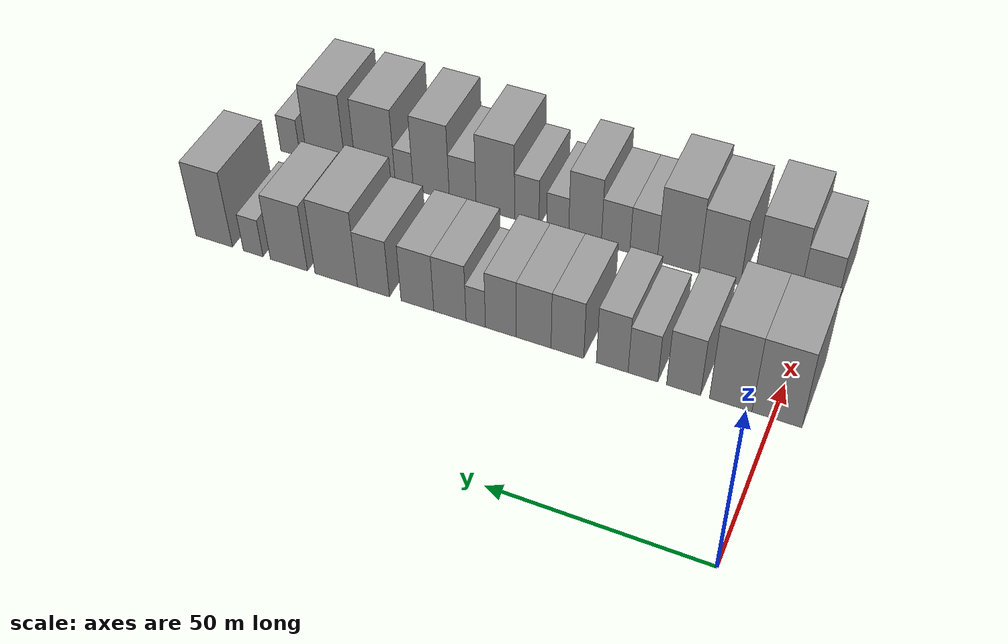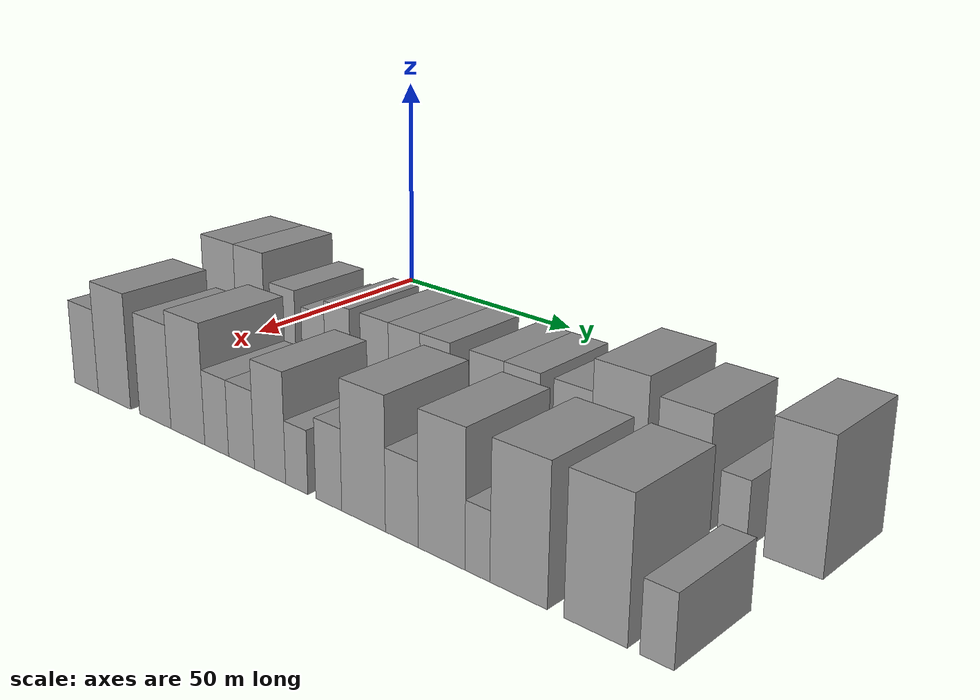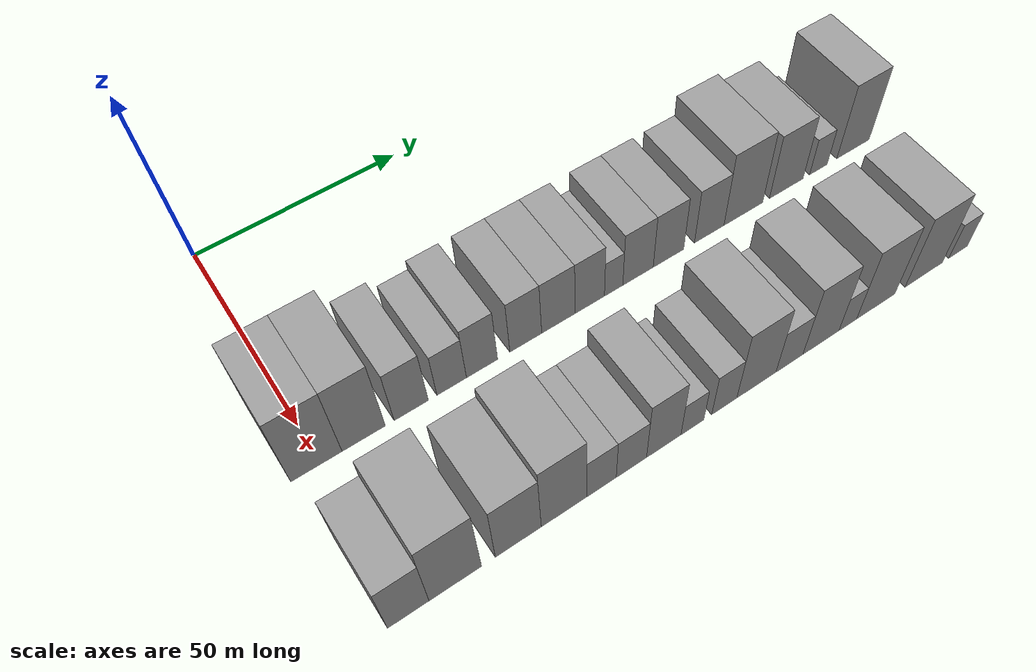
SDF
<sdf version="1.6">
 <world name="default">
  <model name="building_30">
   <static>1</static>
   <pose>50.0000 -0.9442 0 0.000000 0.000000 0.000000</pose>
   <link name="link">
    <pose>0 0 12.00 0 0 0</pose>
    <collision name="collision"><geometry><box><size>20.0000 11.0809 24.0000</size></box></geometry></collision>
    <visual name="visual">
     <cast_shadows>0</cast_shadows>
     <geometry><box><size>20.0000 11.0809 24.0000</size></box></geometry>
     <material>
      <script>
       <uri>model://grey_wall/materials/scripts</uri>
       <uri>model://grey_wall/materials/textures</uri>
       <name>vrc/grey_wall</name>
      </script>
     </material>
    </visual>
   </link>
  </model>
  <model name="building_31">
   <static>1</static>
   <pose>50.0000 9.4016 0 0.000000 0.000000 0.000000</pose>
   <link name="link">
    <pose>0 0 12.00 0 0 0</pose>
    <collision name="collision"><geometry><box><size>20.0000 9.6106 24.0000</size></box></geometry></collision>
    <visual name="visual">
     <cast_shadows>0</cast_shadows>
     <geometry><box><size>20.0000 9.6106 24.0000</size></box></geometry>
     <material>
      <script>
       <uri>model://grey_wall/materials/scripts</uri>
       <uri>model://grey_wall/materials/textures</uri>
       <name>vrc/grey_wall</name>
      </script>
     </material>
    </visual>
   </link>
  </model>
  <model name="building_32">
   <static>1</static>
   <pose>50.0000 20.1189 0 0.000000 0.000000 0.000000</pose>
   <link name="link">
    <pose>0 0 9.00 0 0 0</pose>
    <collision name="collision"><geometry><box><size>20.0000 7.8241 18.0000</size></box></geometry></collision>
    <visual name="visual">
     <cast_shadows>0</cast_shadows>
     <geometry><box><size>20.0000 7.8241 18.0000</size></box></geometry>
     <material>
      <script>
       <uri>model://grey_wall/materials/scripts</uri>
       <uri>model://grey_wall/materials/textures</uri>
       <name>vrc/grey_wall</name>
      </script>
     </material>
    </visual>
   </link>
  </model>
  <model name="building_33">
   <static>1</static>
   <pose>50.0000 29.5173 0 0.000000 0.000000 0.000000</pose>
   <link name="link">
    <pose>0 0 7.50 0 0 0</pose>
    <collision name="collision"><geometry><box><size>20.0000 6.9727 15.0000</size></box></geometry></collision>
    <visual name="visual">
     <cast_shadows>0</cast_shadows>
     <geometry><box><size>20.0000 6.9727 15.0000</size></box></geometry>
     <material>
      <script>
       <uri>model://grey_wall/materials/scripts</uri>
       <uri>model://grey_wall/materials/textures</uri>
       <name>vrc/grey_wall</name>
      </script>
     </material>
    </visual>
   </link>
  </model>
  <model name="building_34">
   <static>1</static>
   <pose>50.0000 36.7417 0 0.000000 0.000000 0.000000</pose>
   <link name="link">
    <pose>0 0 9.00 0 0 0</pose>
    <collision name="collision"><geometry><box><size>20.0000 7.4761 18.0000</size></box></geometry></collision>
    <visual name="visual">
     <cast_shadows>0</cast_shadows>
     <geometry><box><size>20.0000 7.4761 18.0000</size></box></geometry>
     <material>
      <script>
       <uri>model://grey_wall/materials/scripts</uri>
       <uri>model://grey_wall/materials/textures</uri>
       <name>vrc/grey_wall</name>
      </script>
     </material>
    </visual>
   </link>
  </model>
  <model name="building_35">
   <static>1</static>
   <pose>50.0000 47.4187 0 0.000000 0.000000 0.000000</pose>
   <link name="link">
    <pose>0 0 9.00 0 0 0</pose>
    <collision name="collision"><geometry><box><size>20.0000 7.8779 18.0000</size></box></geometry></collision>
    <visual name="visual">
     <cast_shadows>0</cast_shadows>
     <geometry><box><size>20.0000 7.8779 18.0000</size></box></geometry>
     <material>
      <script>
       <uri>model://grey_wall/materials/scripts</uri>
       <uri>model://grey_wall/materials/textures</uri>
       <name>vrc/grey_wall</name>
      </script>
     </material>
    </visual>
   </link>
  </model>
  <model name="building_36">
   <static>1</static>
   <pose>50.0000 55.5875 0 0.000000 0.000000 0.000000</pose>
   <link name="link">
    <pose>0 0 9.00 0 0 0</pose>
    <collision name="collision"><geometry><box><size>20.0000 8.4597 18.0000</size></box></geometry></collision>
    <visual name="visual">
     <cast_shadows>0</cast_shadows>
     <geometry><box><size>20.0000 8.4597 18.0000</size></box></geometry>
     <material>
      <script>
       <uri>model://grey_wall/materials/scripts</uri>
       <uri>model://grey_wall/materials/textures</uri>
       <name>vrc/grey_wall</name>
      </script>
     </material>
    </visual>
   </link>
  </model>
  <model name="building_37">
   <static>1</static>
   <pose>50.0000 63.6244 0 0.000000 0.000000 0.000000</pose>
   <link name="link">
    <pose>0 0 9.00 0 0 0</pose>
    <collision name="collision"><geometry><box><size>20.0000 7.6142 18.0000</size></box></geometry></collision>
    <visual name="visual">
     <cast_shadows>0</cast_shadows>
     <geometry><box><size>20.0000 7.6142 18.0000</size></box></geometry>
     <material>
      <script>
       <uri>model://grey_wall/materials/scripts</uri>
       <uri>model://grey_wall/materials/textures</uri>
       <name>vrc/grey_wall</name>
      </script>
     </material>
    </visual>
   </link>
  </model>
  <model name="building_38">
   <static>1</static>
   <pose>50.0000 69.8518 0 0.000000 0.000000 0.000000</pose>
   <link name="link">
    <pose>0 0 6.00 0 0 0</pose>
    <collision name="collision"><geometry><box><size>20.0000 4.8407 12.0000</size></box></geometry></collision>
    <visual name="visual">
     <cast_shadows>0</cast_shadows>
     <geometry><box><size>20.0000 4.8407 12.0000</size></box></geometry>
     <material>
      <script>
       <uri>model://grey_wall/materials/scripts</uri>
       <uri>model://grey_wall/materials/textures</uri>
       <name>vrc/grey_wall</name>
      </script>
     </material>
    </visual>
   </link>
  </model>
  <model name="building_39">
   <static>1</static>
   <pose>50.0000 76.3494 0 0.000000 0.000000 0.000000</pose>
   <link name="link">
    <pose>0 0 9.00 0 0 0</pose>
    <collision name="collision"><geometry><box><size>20.0000 8.1544 18.0000</size></box></geometry></collision>
    <visual name="visual">
     <cast_shadows>0</cast_shadows>
     <geometry><box><size>20.0000 8.1544 18.0000</size></box></geometry>
     <material>
      <script>
       <uri>model://grey_wall/materials/scripts</uri>
       <uri>model://grey_wall/materials/textures</uri>
       <name>vrc/grey_wall</name>
      </script>
     </material>
    </visual>
   </link>
  </model>
  <model name="building_40">
   <static>1</static>
   <pose>50.0000 84.6079 0 0.000000 0.000000 0.000000</pose>
   <link name="link">
    <pose>0 0 9.00 0 0 0</pose>
    <collision name="collision"><geometry><box><size>20.0000 8.3627 18.0000</size></box></geometry></collision>
    <visual name="visual">
     <cast_shadows>0</cast_shadows>
     <geometry><box><size>20.0000 8.3627 18.0000</size></box></geometry>
     <material>
      <script>
       <uri>model://grey_wall/materials/scripts</uri>
       <uri>model://grey_wall/materials/textures</uri>
       <name>vrc/grey_wall</name>
      </script>
     </material>
    </visual>
   </link>
  </model>
  <model name="building_41">
   <static>1</static>
   <pose>50.0000 95.9623 0 0.000000 0.000000 0.000000</pose>
   <link name="link">
    <pose>0 0 9.00 0 0 0</pose>
    <collision name="collision"><geometry><box><size>20.0000 8.3461 18.0000</size></box></geometry></collision>
    <visual name="visual">
     <cast_shadows>0</cast_shadows>
     <geometry><box><size>20.0000 8.3461 18.0000</size></box></geometry>
     <material>
      <script>
       <uri>model://grey_wall/materials/scripts</uri>
       <uri>model://grey_wall/materials/textures</uri>
       <name>vrc/grey_wall</name>
      </script>
     </material>
    </visual>
   </link>
  </model>
  <model name="building_42">
   <static>1</static>
   <pose>50.0000 105.7547 0 0.000000 0.000000 0.000000</pose>
   <link name="link">
    <pose>0 0 12.00 0 0 0</pose>
    <collision name="collision"><geometry><box><size>20.0000 11.2388 24.0000</size></box></geometry></collision>
    <visual name="visual">
     <cast_shadows>0</cast_shadows>
     <geometry><box><size>20.0000 11.2388 24.0000</size></box></geometry>
     <material>
      <script>
       <uri>model://grey_wall/materials/scripts</uri>
       <uri>model://grey_wall/materials/textures</uri>
       <name>vrc/grey_wall</name>
      </script>
     </material>
    </visual>
   </link>
  </model>
  <model name="building_43">
   <static>1</static>
   <pose>50.0000 118.3998 0 0.000000 0.000000 0.000000</pose>
   <link name="link">
    <pose>0 0 10.50 0 0 0</pose>
    <collision name="collision"><geometry><box><size>20.0000 10.0513 21.0000</size></box></geometry></collision>
    <visual name="visual">
     <cast_shadows>0</cast_shadows>
     <geometry><box><size>20.0000 10.0513 21.0000</size></box></geometry>
     <material>
      <script>
       <uri>model://grey_wall/materials/scripts</uri>
       <uri>model://grey_wall/materials/textures</uri>
       <name>vrc/grey_wall</name>
      </script>
     </material>
    </visual>
   </link>
  </model>
  <model name="building_44">
   <static>1</static>
   <pose>50.0000 128.1197 0 0.000000 0.000000 0.000000</pose>
   <link name="link">
    <pose>0 0 6.00 0 0 0</pose>
    <collision name="collision"><geometry><box><size>20.0000 5.3886 12.0000</size></box></geometry></collision>
    <visual name="visual">
     <cast_shadows>0</cast_shadows>
     <geometry><box><size>20.0000 5.3886 12.0000</size></box></geometry>
     <material>
      <script>
       <uri>model://grey_wall/materials/scripts</uri>
       <uri>model://grey_wall/materials/textures</uri>
       <name>vrc/grey_wall</name>
      </script>
     </material>
    </visual>
   </link>
  </model>
  <model name="building_45">
   <static>1</static>
   <pose>50.0000 138.9003 0 0.000000 0.000000 0.000000</pose>
   <link name="link">
    <pose>0 0 12.00 0 0 0</pose>
    <collision name="collision"><geometry><box><size>20.0000 10.1726 24.0000</size></box></geometry></collision>
    <visual name="visual">
     <cast_shadows>0</cast_shadows>
     <geometry><box><size>20.0000 10.1726 24.0000</size></box></geometry>
     <material>
      <script>
       <uri>model://grey_wall/materials/scripts</uri>
       <uri>model://grey_wall/materials/textures</uri>
       <name>vrc/grey_wall</name>
      </script>
     </material>
    </visual>
   </link>
  </model>
  <model name="building_97">
   <static>1</static>
   <pose>85.0000 -0.6784 0 0.000000 0.000000 0.000000</pose>
   <link name="link">
    <pose>0 0 9.00 0 0 0</pose>
    <collision name="collision"><geometry><box><size>20.0000 8.5508 18.0000</size></box></geometry></collision>
    <visual name="visual">
     <cast_shadows>0</cast_shadows>
     <geometry><box><size>20.0000 8.5508 18.0000</size></box></geometry>
     <material>
      <script>
       <uri>model://grey_wall/materials/scripts</uri>
       <uri>model://grey_wall/materials/textures</uri>
       <name>vrc/grey_wall</name>
      </script>
     </material>
    </visual>
   </link>
  </model>
  <model name="building_98">
   <static>1</static>
   <pose>85.0000 9.1576 0 0.000000 0.000000 0.000000</pose>
   <link name="link">
    <pose>0 0 12.00 0 0 0</pose>
    <collision name="collision"><geometry><box><size>20.0000 11.1212 24.0000</size></box></geometry></collision>
    <visual name="visual">
     <cast_shadows>0</cast_shadows>
     <geometry><box><size>20.0000 11.1212 24.0000</size></box></geometry>
     <material>
      <script>
       <uri>model://grey_wall/materials/scripts</uri>
       <uri>model://grey_wall/materials/textures</uri>
       <name>vrc/grey_wall</name>
      </script>
     </material>
    </visual>
   </link>
  </model>
  <model name="building_99">
   <static>1</static>
   <pose>85.0000 22.8064 0 0.000000 0.000000 0.000000</pose>
   <link name="link">
    <pose>0 0 10.50 0 0 0</pose>
    <collision name="collision"><geometry><box><size>20.0000 10.1763 21.0000</size></box></geometry></collision>
    <visual name="visual">
     <cast_shadows>0</cast_shadows>
     <geometry><box><size>20.0000 10.1763 21.0000</size></box></geometry>
     <material>
      <script>
       <uri>model://grey_wall/materials/scripts</uri>
       <uri>model://grey_wall/materials/textures</uri>
       <name>vrc/grey_wall</name>
      </script>
     </material>
    </visual>
   </link>
  </model>
  <model name="building_100">
   <static>1</static>
   <pose>85.0000 33.0621 0 0.000000 0.000000 0.000000</pose>
   <link name="link">
    <pose>0 0 12.00 0 0 0</pose>
    <collision name="collision"><geometry><box><size>20.0000 10.3352 24.0000</size></box></geometry></collision>
    <visual name="visual">
     <cast_shadows>0</cast_shadows>
     <geometry><box><size>20.0000 10.3352 24.0000</size></box></geometry>
     <material>
      <script>
       <uri>model://grey_wall/materials/scripts</uri>
       <uri>model://grey_wall/materials/textures</uri>
       <name>vrc/grey_wall</name>
      </script>
     </material>
    </visual>
   </link>
  </model>
  <model name="building_101">
   <static>1</static>
   <pose>85.0000 41.7088 0 0.000000 0.000000 0.000000</pose>
   <link name="link">
    <pose>0 0 7.50 0 0 0</pose>
    <collision name="collision"><geometry><box><size>20.0000 6.9582 15.0000</size></box></geometry></collision>
    <visual name="visual">
     <cast_shadows>0</cast_shadows>
     <geometry><box><size>20.0000 6.9582 15.0000</size></box></geometry>
     <material>
      <script>
       <uri>model://grey_wall/materials/scripts</uri>
       <uri>model://grey_wall/materials/textures</uri>
       <name>vrc/grey_wall</name>
      </script>
     </material>
    </visual>
   </link>
  </model>
  <model name="building_102">
   <static>1</static>
   <pose>85.0000 48.8190 0 0.000000 0.000000 0.000000</pose>
   <link name="link">
    <pose>0 0 7.50 0 0 0</pose>
    <collision name="collision"><geometry><box><size>20.0000 7.2622 15.0000</size></box></geometry></collision>
    <visual name="visual">
     <cast_shadows>0</cast_shadows>
     <geometry><box><size>20.0000 7.2622 15.0000</size></box></geometry>
     <material>
      <script>
       <uri>model://grey_wall/materials/scripts</uri>
       <uri>model://grey_wall/materials/textures</uri>
       <name>vrc/grey_wall</name>
      </script>
     </material>
    </visual>
   </link>
  </model>
  <model name="building_103">
   <static>1</static>
   <pose>85.0000 56.6655 0 0.000000 0.000000 0.000000</pose>
   <link name="link">
    <pose>0 0 10.50 0 0 0</pose>
    <collision name="collision"><geometry><box><size>20.0000 8.4308 21.0000</size></box></geometry></collision>
    <visual name="visual">
     <cast_shadows>0</cast_shadows>
     <geometry><box><size>20.0000 8.4308 21.0000</size></box></geometry>
     <material>
      <script>
       <uri>model://grey_wall/materials/scripts</uri>
       <uri>model://grey_wall/materials/textures</uri>
       <name>vrc/grey_wall</name>
      </script>
     </material>
    </visual>
   </link>
  </model>
  <model name="building_104">
   <static>1</static>
   <pose>85.0000 63.7536 0 0.000000 0.000000 0.000000</pose>
   <link name="link">
    <pose>0 0 6.00 0 0 0</pose>
    <collision name="collision"><geometry><box><size>20.0000 5.7455 12.0000</size></box></geometry></collision>
    <visual name="visual">
     <cast_shadows>0</cast_shadows>
     <geometry><box><size>20.0000 5.7455 12.0000</size></box></geometry>
     <material>
      <script>
       <uri>model://grey_wall/materials/scripts</uri>
       <uri>model://grey_wall/materials/textures</uri>
       <name>vrc/grey_wall</name>
      </script>
     </material>
    </visual>
   </link>
  </model>
  <model name="building_105">
   <static>1</static>
   <pose>85.0000 71.8450 0 0.000000 0.000000 0.000000</pose>
   <link name="link">
    <pose>0 0 7.50 0 0 0</pose>
    <collision name="collision"><geometry><box><size>20.0000 6.4372 15.0000</size></box></geometry></collision>
    <visual name="visual">
     <cast_shadows>0</cast_shadows>
     <geometry><box><size>20.0000 6.4372 15.0000</size></box></geometry>
     <material>
      <script>
       <uri>model://grey_wall/materials/scripts</uri>
       <uri>model://grey_wall/materials/textures</uri>
       <name>vrc/grey_wall</name>
      </script>
     </material>
    </visual>
   </link>
  </model>
  <model name="building_106">
   <static>1</static>
   <pose>85.0000 80.2032 0 0.000000 0.000000 0.000000</pose>
   <link name="link">
    <pose>0 0 12.00 0 0 0</pose>
    <collision name="collision"><geometry><box><size>20.0000 10.2793 24.0000</size></box></geometry></collision>
    <visual name="visual">
     <cast_shadows>0</cast_shadows>
     <geometry><box><size>20.0000 10.2793 24.0000</size></box></geometry>
     <material>
      <script>
       <uri>model://grey_wall/materials/scripts</uri>
       <uri>model://grey_wall/materials/textures</uri>
       <name>vrc/grey_wall</name>
      </script>
     </material>
    </visual>
   </link>
  </model>
  <model name="building_107">
   <static>1</static>
   <pose>85.0000 88.9788 0 0.000000 0.000000 0.000000</pose>
   <link name="link">
    <pose>0 0 7.50 0 0 0</pose>
    <collision name="collision"><geometry><box><size>20.0000 7.2718 15.0000</size></box></geometry></collision>
    <visual name="visual">
     <cast_shadows>0</cast_shadows>
     <geometry><box><size>20.0000 7.2718 15.0000</size></box></geometry>
     <material>
      <script>
       <uri>model://grey_wall/materials/scripts</uri>
       <uri>model://grey_wall/materials/textures</uri>
       <name>vrc/grey_wall</name>
      </script>
     </material>
    </visual>
   </link>
  </model>
  <model name="building_108">
   <static>1</static>
   <pose>85.0000 97.5811 0 0.000000 0.000000 0.000000</pose>
   <link name="link">
    <pose>0 0 12.00 0 0 0</pose>
    <collision name="collision"><geometry><box><size>20.0000 9.9329 24.0000</size></box></geometry></collision>
    <visual name="visual">
     <cast_shadows>0</cast_shadows>
     <geometry><box><size>20.0000 9.9329 24.0000</size></box></geometry>
     <material>
      <script>
       <uri>model://grey_wall/materials/scripts</uri>
       <uri>model://grey_wall/materials/textures</uri>
       <name>vrc/grey_wall</name>
      </script>
     </material>
    </visual>
   </link>
  </model>
  <model name="building_109">
   <static>1</static>
   <pose>85.0000 105.0514 0 0.000000 0.000000 0.000000</pose>
   <link name="link">
    <pose>0 0 6.00 0 0 0</pose>
    <collision name="collision"><geometry><box><size>20.0000 5.0077 12.0000</size></box></geometry></collision>
    <visual name="visual">
     <cast_shadows>0</cast_shadows>
     <geometry><box><size>20.0000 5.0077 12.0000</size></box></geometry>
     <material>
      <script>
       <uri>model://grey_wall/materials/scripts</uri>
       <uri>model://grey_wall/materials/textures</uri>
       <name>vrc/grey_wall</name>
      </script>
     </material>
    </visual>
   </link>
  </model>
  <model name="building_110">
   <static>1</static>
   <pose>85.0000 113.0807 0 0.000000 0.000000 0.000000</pose>
   <link name="link">
    <pose>0 0 12.00 0 0 0</pose>
    <collision name="collision"><geometry><box><size>20.0000 11.0508 24.0000</size></box></geometry></collision>
    <visual name="visual">
     <cast_shadows>0</cast_shadows>
     <geometry><box><size>20.0000 11.0508 24.0000</size></box></geometry>
     <material>
      <script>
       <uri>model://grey_wall/materials/scripts</uri>
       <uri>model://grey_wall/materials/textures</uri>
       <name>vrc/grey_wall</name>
      </script>
     </material>
    </visual>
   </link>
  </model>
  <model name="building_111">
   <static>1</static>
   <pose>85.0000 127.1716 0 0.000000 0.000000 0.000000</pose>
   <link name="link">
    <pose>0 0 12.00 0 0 0</pose>
    <collision name="collision"><geometry><box><size>20.0000 11.1311 24.0000</size></box></geometry></collision>
    <visual name="visual">
     <cast_shadows>0</cast_shadows>
     <geometry><box><size>20.0000 11.1311 24.0000</size></box></geometry>
     <material>
      <script>
       <uri>model://grey_wall/materials/scripts</uri>
       <uri>model://grey_wall/materials/textures</uri>
       <name>vrc/grey_wall</name>
      </script>
     </material>
    </visual>
   </link>
  </model>
  <model name="building_112">
   <static>1</static>
   <pose>85.0000 137.5514 0 0.000000 0.000000 0.000000</pose>
   <link name="link">
    <pose>0 0 6.00 0 0 0</pose>
    <collision name="collision"><geometry><box><size>20.0000 5.6285 12.0000</size></box></geometry></collision>
    <visual name="visual">
     <cast_shadows>0</cast_shadows>
     <geometry><box><size>20.0000 5.6285 12.0000</size></box></geometry>
     <material>
      <script>
       <uri>model://grey_wall/materials/scripts</uri>
       <uri>model://grey_wall/materials/textures</uri>
       <name>vrc/grey_wall</name>
      </script>
     </material>
    </visual>
   </link>
  </model>
 </world>
</sdf>
